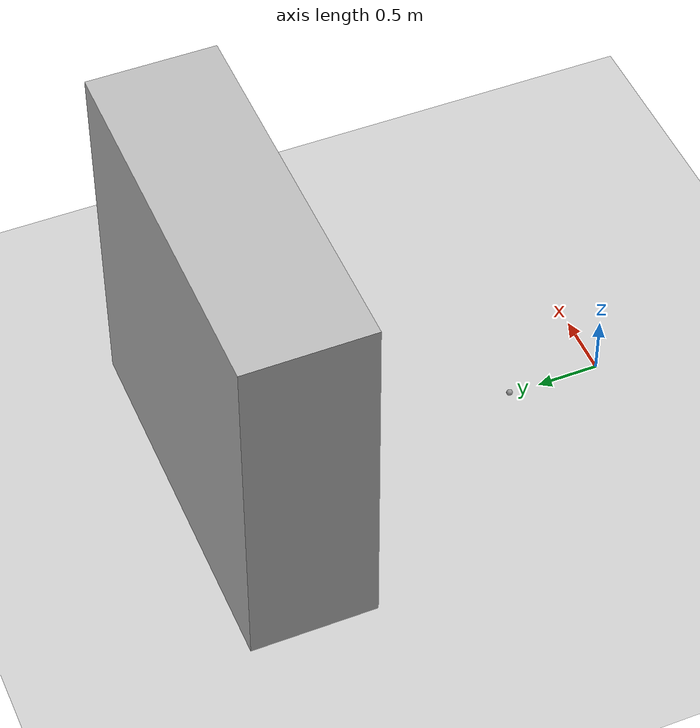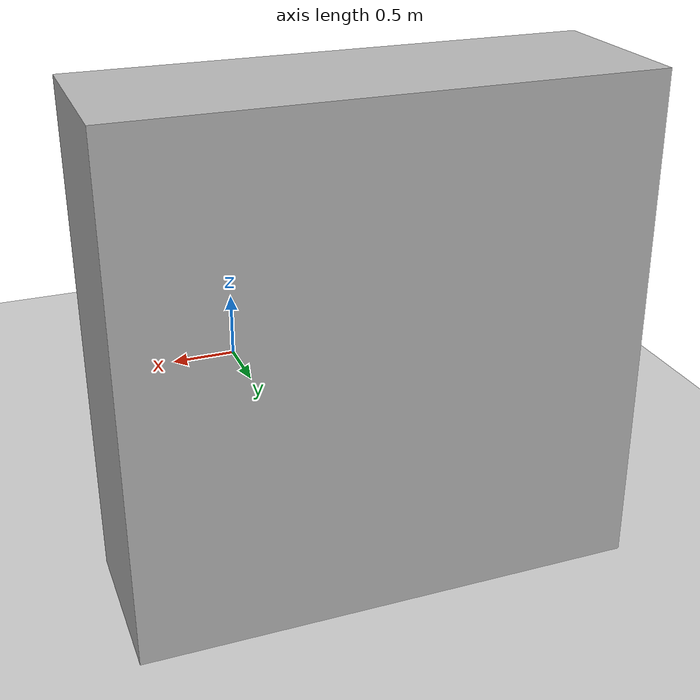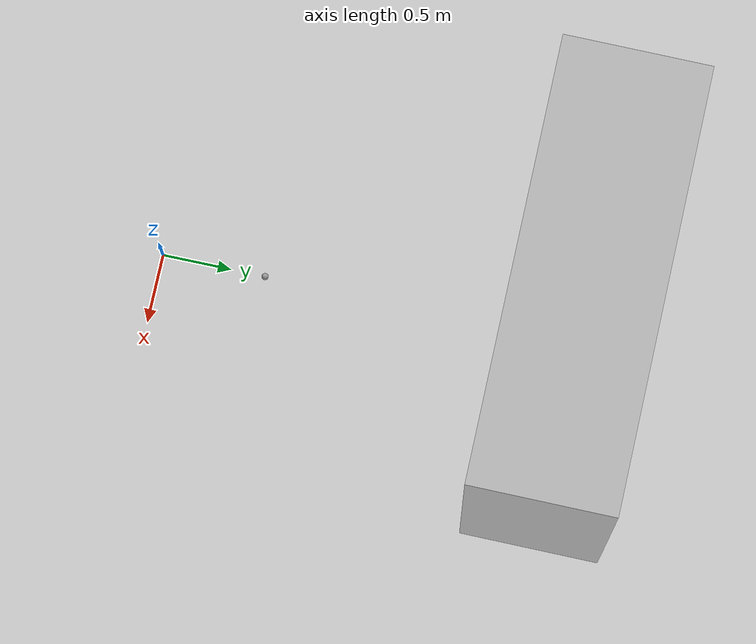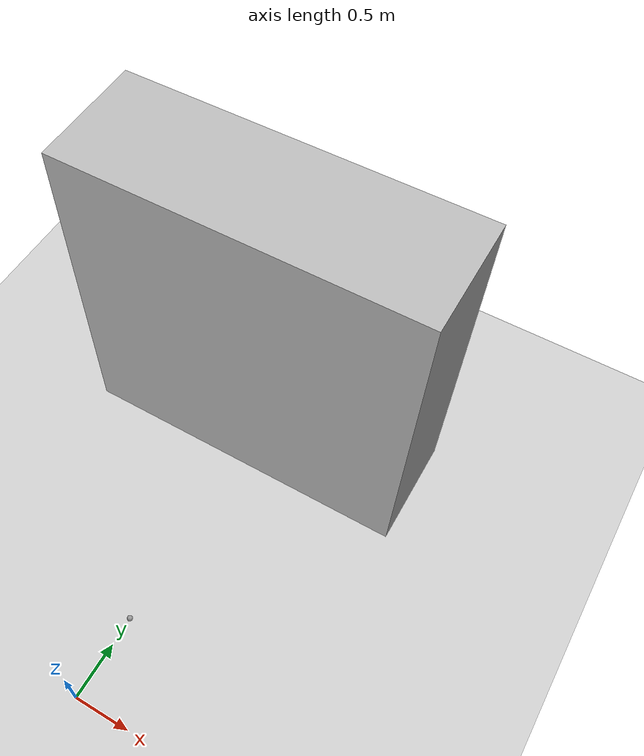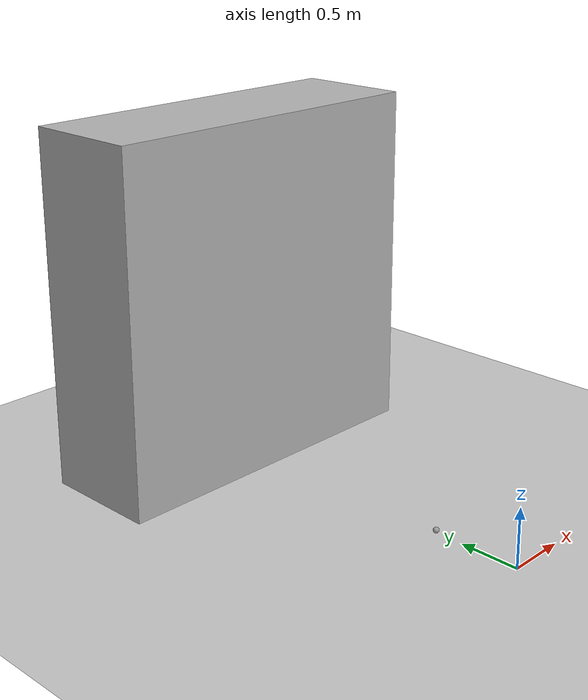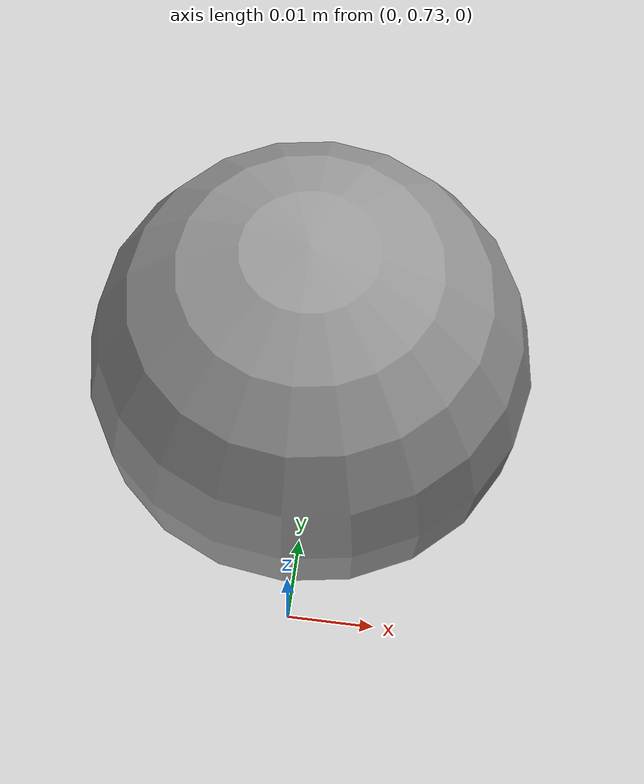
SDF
<?xml version="1.0" ?>
<sdf version="1.4">

  <world name="default">
    <include>
      <uri>model://ground_plane</uri>
    </include>

    <!-- Global light source -->
    <include>
      <uri>model://sun</uri>
    </include>

    <!-- Focus camera on tall pendulum -->
    <gui fullscreen='0'>
      <camera name='user_camera'>
        <pose>4.927360 -4.376610 3.740080 0.000000 0.275643 2.356190</pose>
        <view_controller>orbit</view_controller>
      </camera>
    </gui>

    <model name="brick_box_3x1x3">
        <static>1</static>
        <link name="chassis">

        <pose frame="">0 3.0 1.5 0 0 0</pose>
        <collision name="collision">
        <geometry>
          <box>
            <size>3 1 3</size>
          </box>
        </geometry>
        <max_contacts>10</max_contacts>
        <surface>
          <bounce />
          <friction>
            <ode />
          </friction>
          <contact>
            <ode />
          </contact>
        </surface>
        </collision>
        <visual name="visual">
          <geometry>
            <mesh>
              <uri>model://brick_box_3x1x3/meshes/simple_box.dae</uri>
              <scale> 3 1 3</scale>
            </mesh>
          </geometry>
          <material>
            <script>
              <uri>model://brick_box_3x1x3/materials/scripts</uri>
              <uri>model:??brick_box_3x1x3/materials/textures</uri>
              <name>BrickBox/Diffuse</name>
            </script>
          </material>
        </visual>
        <velocity_decay>
          <linear>0</linear>
          <angular>0</angular>
        </velocity_decay>
        <self_collide>0</self_collide>
        <kinematic>0</kinematic>
        <gravity>1</gravity>
        </link>
    </model>

    <model name='unit_sphere'>
      <pose frame=''>0 0.75 0.025 0 0 0</pose>
      <link name='link'>
        <inertial>
          <mass>0.02</mass>
          <inertia>
            <ixx>0.1</ixx>
            <ixy>0</ixy>
            <ixz>0</ixz>
            <iyy>0.1</iyy>
            <iyz>0</iyz>
            <izz>0.1</izz>
          </inertia>
        </inertial>
        <collision name='collision'>
          <geometry>
            <sphere>
              <radius>0.025</radius>
            </sphere>
          </geometry>
          <max_contacts>10</max_contacts>
          <surface>
            <contact>
              <ode/>
            </contact>
            <bounce/>
            <friction>
              <torsional>
                <ode/>
              </torsional>
              <ode/>
            </friction>
          </surface>
        </collision>
        <visual name='visual'>
          <geometry>
            <sphere>
              <radius>0.025</radius>
            </sphere>
          </geometry>
          <material>
            <script>
              <name>Gazebo/Grey</name>
              <uri>file://media/materials/scripts/gazebo.material</uri>
            </script>
          </material>
        </visual>
        <self_collide>0</self_collide>
        <enable_wind>0</enable_wind>
        <kinematic>0</kinematic>
      </link>

    </model>
  </world>
</sdf>
